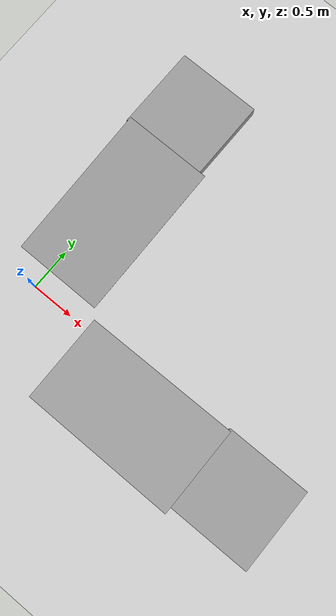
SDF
<sdf version="1.6">
 <world name="default">
  <light name="sun" type="directional">
   <pose>0 0 10 0 -0 0</pose>
   <diffuse>0.8 0.8 0.8 1</diffuse>
   <specular>0.1 0.1 0.1 1</specular>
   <attenuation>
    <range>1000</range>
    <constant>0.9</constant>
    <linear>0.01</linear>
    <quadratic>0.001</quadratic>
   </attenuation>
   <direction>-0.5 0.5 -1</direction>
  </light>
  <model name="ground_plane">
   <static>1</static>
   <link name="link">
    <collision name="collision">
     <geometry><plane><normal>0 0 1</normal><size>100 100</size></plane></geometry>
     <surface><friction><ode><mu>100</mu><mu2>50</mu2></ode></friction></surface>
    </collision>
    <visual name="visual">
     <cast_shadows>0</cast_shadows>
     <geometry><plane><normal>0 0 1</normal><size>100 100</size></plane></geometry>
     <material>
      <script><uri>file://media/materials/scripts/gazebo.material</uri><name>Gazebo/Grey</name></script>
     </material>
    </visual>
   </link>
  </model>
  <gravity>0 0 -9.8</gravity>
  <magnetic_field>6e-06 2.3e-05 -4.2e-05</magnetic_field>
  <atmosphere type="adiabatic"/>
  <physics name="default_physics" default="0" type="ode">
   <max_step_size>0.001</max_step_size>
   <real_time_factor>1</real_time_factor>
   <real_time_update_rate>1000</real_time_update_rate>
  </physics>
  <scene><ambient>0.4 0.4 0.4 1</ambient><background>0.7 0.7 0.7 1</background><shadows>1</shadows></scene>
  <spherical_coordinates>
   <surface_model>EARTH_WGS84</surface_model>
   <latitude_deg>0</latitude_deg>
   <longitude_deg>0</longitude_deg>
   <elevation>0</elevation>
   <heading_deg>0</heading_deg>
  </spherical_coordinates>
  <model name="unit_box">
   <pose>3.05483 -0.335589 0.07402 1.9e-05 -3.9e-05 0.002613</pose>
   <link name="link">
    <inertial>
     <mass>1</mass>
     <inertia>
      <ixx>0.166667</ixx>
      <ixy>0</ixy>
      <ixz>0</ixz>
      <iyy>0.166667</iyy>
      <iyz>0</iyz>
      <izz>0.166667</izz>
     </inertia>
    </inertial>
    <collision name="collision"><geometry><box><size>1 1 0.148094</size></box></geometry></collision>
    <visual name="visual">
     <geometry><box><size>1 1 0.148094</size></box></geometry>
     <material>
      <script><name>Gazebo/Grey</name><uri>file://media/materials/scripts/gazebo.material</uri></script>
     </material>
    </visual>
   </link>
  </model>
  <model name="unit_box_0">
   <pose>1.65148 -0.392525 0.076472 0 -0.080633 0.002971</pose>
   <link name="link">
    <inertial>
     <mass>1</mass>
     <inertia>
      <ixx>0.166667</ixx>
      <ixy>0</ixy>
      <ixz>0</ixz>
      <iyy>0.166667</iyy>
      <iyz>0</iyz>
      <izz>0.166667</izz>
     </inertia>
    </inertial>
    <collision name="collision">
     <geometry><box><size>1.86358 1.06011 0.00285143</size></box></geometry>
    </collision>
    <visual name="visual">
     <geometry><box><size>1.86358 1.06011 0.00285143</size></box></geometry>
     <material>
      <script><name>Gazebo/Grey</name><uri>file://media/materials/scripts/gazebo.material</uri></script>
     </material>
    </visual>
   </link>
  </model>
  <model name="unit_box_clone">
   <pose>0.080885 2.53966 0.074047 0 0 -0.00478</pose>
   <link name="link">
    <inertial>
     <mass>1</mass>
     <inertia>
      <ixx>0.166667</ixx>
      <ixy>0</ixy>
      <ixz>0</ixz>
      <iyy>0.166667</iyy>
      <iyz>0</iyz>
      <izz>0.166667</izz>
     </inertia>
    </inertial>
    <collision name="collision"><geometry><box><size>1 1 0.148094</size></box></geometry></collision>
    <visual name="visual">
     <geometry><box><size>1 1 0.148094</size></box></geometry>
     <material>
      <script><name>Gazebo/Grey</name><uri>file://media/materials/scripts/gazebo.material</uri></script>
     </material>
    </visual>
   </link>
  </model>
  <model name="unit_box_0_clone">
   <pose>0.117412 1.16421 0.077664 1.4e-05 -0.081918 1.5656</pose>
   <link name="link">
    <inertial>
     <mass>1</mass>
     <inertia>
      <ixx>0.166667</ixx>
      <ixy>0</ixy>
      <ixz>0</ixz>
      <iyy>0.166667</iyy>
      <iyz>0</iyz>
      <izz>0.166667</izz>
     </inertia>
    </inertial>
    <collision name="collision"><geometry><box><size>1.86358 1.06011 0.002851</size></box></geometry></collision>
    <visual name="visual">
     <geometry><box><size>1.86358 1.06011 0.002851</size></box></geometry>
     <material>
      <script><name>Gazebo/Grey</name><uri>file://media/materials/scripts/gazebo.material</uri></script>
     </material>
    </visual>
   </link>
  </model>
 </world>
</sdf>
